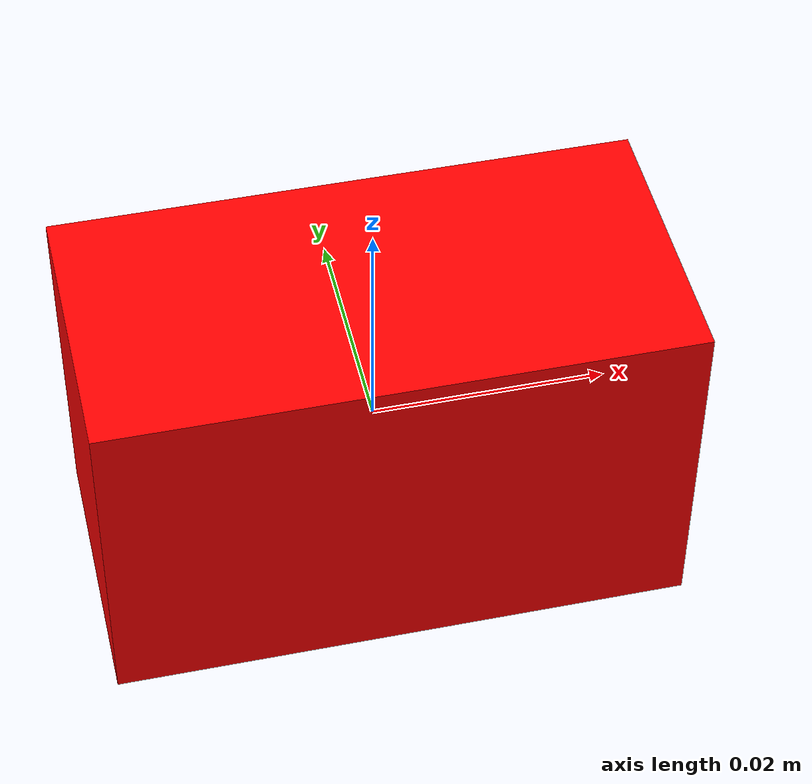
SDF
<?xml version='1.0'?>
<sdf version='1.7'>
  <model name='camera'>
    <link name='link'>
      <inertial>
        <mass>0.00000001</mass>
        <inertia>
          <ixx>1.02e-06</ixx>
          <iyy>4.6e-07</iyy>
          <izz>9.2e-07</izz>
          <ixy>0</ixy>
          <ixz>0</ixz>
          <iyz>0</iyz>
        </inertia>
        <pose>0 0 0 0 -0 0</pose>
      </inertial>
      <sensor name='camera' type='depth'>
        <!-- Set always_on only sensor, not on plugin -->
        <always_on>0</always_on>

        <!-- Set update_rate only sensor, not on plugin -->
        <update_rate>1</update_rate>

        <camera name="camera_name">
          <distortion>
            <k1>0.0</k1>
            <k2>0.0</k2>
            <k3>0.0</k3>
            <p1>0.0</p1>
            <p2>0.0</p2>
            <center>0.5 0.5</center>
          </distortion>
        </camera>

        <plugin name="plugin_name" filename="libgazebo_ros_camera.so">
          <ros>
            <namespace>custom_ns</namespace>
            <remapping>custom_camera/image_raw:=custom_camera/custom_image</remapping>
            <remapping>custom_camera/image_depth:=custom_camera/custom_image_depth</remapping>
            <remapping>custom_camera/camera_info:=custom_camera/custom_info_raw</remapping>
            <remapping>custom_camera/camera_info_depth:=custom_camera/custom_info_depth</remapping>
            <remapping>custom_camera/points:=custom_camera/custom_points</remapping>
          </ros>

          <!-- Set camera name. If empty, defaults to sensor name (i.e. "sensor_name") -->
          <camera_name>custom_camera</camera_name>

          <!-- Set TF frame name. If empty, defaults to link name (i.e. "link_name") -->
          <frame_name>custom_frame</frame_name>

          <hack_baseline>0.07</hack_baseline>

          <!-- No need to repeat distortion parameters or to set autoDistortion -->

            <min_depth>0.001</min_depth>
        </plugin>
      </sensor>
      <self_collide>0</self_collide>
      <enable_wind>0</enable_wind>
      <kinematic>0</kinematic>
      <pose>0 0 0 0 -0 1.5708</pose>
      <gravity>1</gravity>
      <visual name='visual'>
        <geometry>
          <box>
            <size>0.024333 0.049378 0.030361</size>
          </box>
        </geometry>
        <material>
          <shader type='pixel'>
            <normal_map>__default__</normal_map>
          </shader>
          <script>
            <name>ModelPreview_4::link::visual_MATERIAL_</name>
          </script>
          <ambient>1 0 0 1</ambient>
          <diffuse>1 0 0 1</diffuse>
          <specular>0 0 0 1</specular>
          <emissive>0 0 0 1</emissive>
        </material>
        <pose>0 0 0 0 -0 0</pose>
        <transparency>0</transparency>
        <cast_shadows>1</cast_shadows>
      </visual>
      <collision name='collision'>
        <laser_retro>0</laser_retro>
        <max_contacts>10</max_contacts>
        <pose>0 0 0 0 -0 0</pose>
        <geometry>
          <box>
            <size>0.024333 0.049378 0.030361</size>
          </box>
        </geometry>
        <surface>
          <friction>
            <ode>
              <mu>1</mu>
              <mu2>1</mu2>
              <fdir1>0 0 0</fdir1>
              <slip1>0</slip1>
              <slip2>0</slip2>
            </ode>
            <torsional>
              <coefficient>1</coefficient>
              <patch_radius>0</patch_radius>
              <surface_radius>0</surface_radius>
              <use_patch_radius>1</use_patch_radius>
              <ode>
                <slip>0</slip>
              </ode>
            </torsional>
          </friction>
          <bounce>
            <restitution_coefficient>0</restitution_coefficient>
            <threshold>1e+06</threshold>
          </bounce>
          <contact>
            <collide_without_contact>0</collide_without_contact>
            <collide_without_contact_bitmask>1</collide_without_contact_bitmask>
            <collide_bitmask>1</collide_bitmask>
            <ode>
              <soft_cfm>0</soft_cfm>
              <soft_erp>0.2</soft_erp>
              <kp>1e+13</kp>
              <kd>1</kd>
              <max_vel>0.01</max_vel>
              <min_depth>0</min_depth>
            </ode>
            <bullet>
              <split_impulse>1</split_impulse>
              <split_impulse_penetration_threshold>-0.01</split_impulse_penetration_threshold>
              <soft_cfm>0</soft_cfm>
              <soft_erp>0.2</soft_erp>
              <kp>1e+13</kp>
              <kd>1</kd>
            </bullet>
          </contact>
        </surface>
      </collision>
    </link>
    <static>1</static>
    <allow_auto_disable>1</allow_auto_disable>
  </model>
</sdf>
